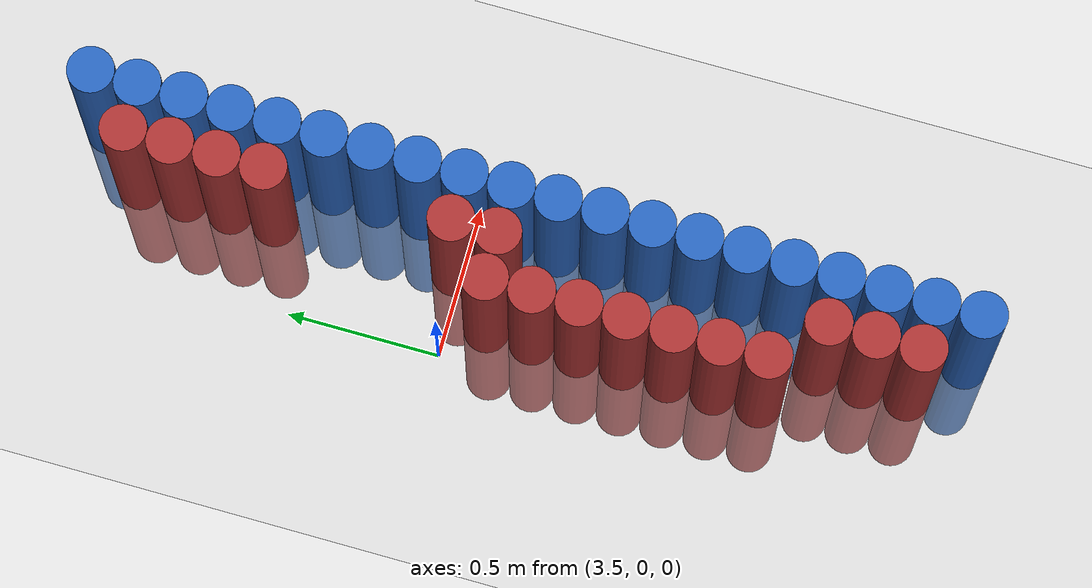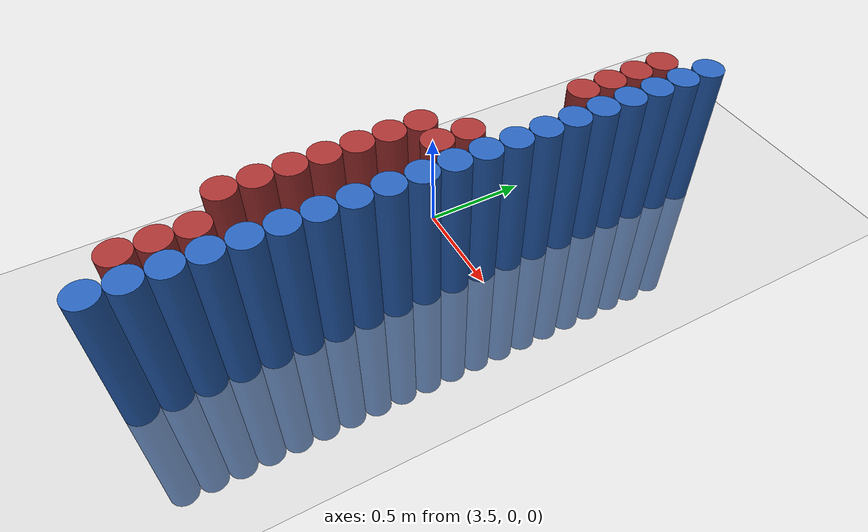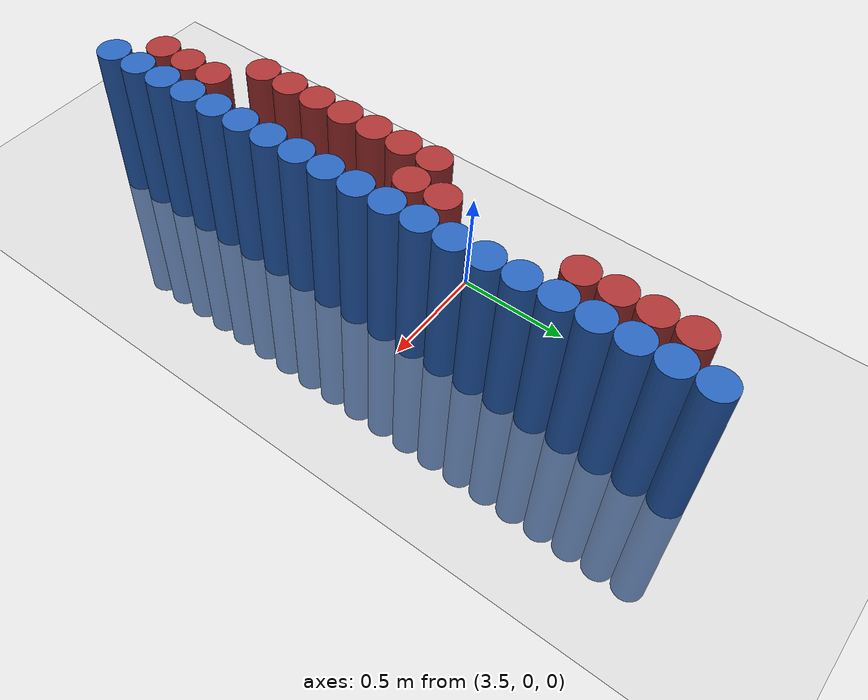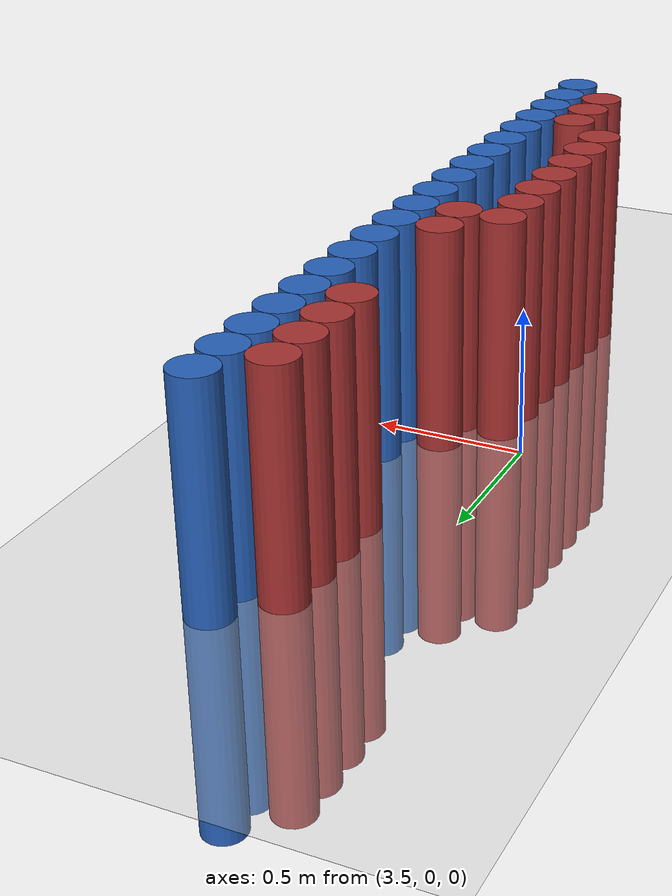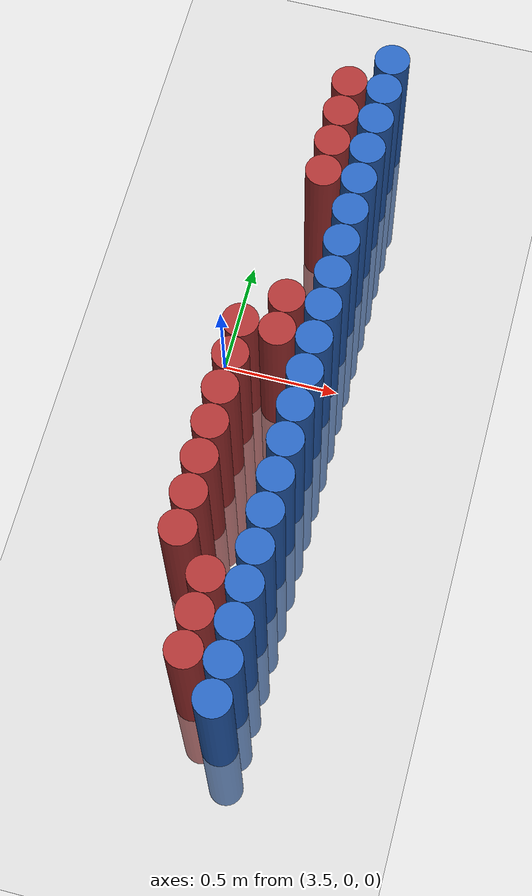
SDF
<sdf version="1.6">
 <world name="default">
  <model name="ground_plane">
   <static>1</static>
   <link name="link">
    <collision name="collision">
     <geometry><plane><normal>0 0 1</normal><size>100 100</size></plane></geometry>
     <surface><friction><ode><mu>100</mu><mu2>50</mu2></ode></friction></surface>
    </collision>
    <visual name="visual">
     <cast_shadows>0</cast_shadows>
     <geometry><plane><normal>0 0 1</normal><size>100 100</size></plane></geometry>
     <material>
      <script><uri>file://media/materials/scripts/gazebo.material</uri><name>Gazebo/Grey</name></script>
     </material>
    </visual>
   </link>
  </model>
  <model name="unit_cylinder_94">
   <static>1</static>
   <pose>3.925000 -1.475000 0.000000 0.000000 0.000000 0.000000</pose>
   <link name="link">
    <inertial>
     <mass>1</mass>
     <inertia><ixx>0.145833</ixx><ixy>0</ixy><ixz>0</ixz><iyy>0.145833</iyy><iyz>0</iyz><izz>0.125</izz></inertia>
    </inertial>
    <collision name="collision">
     <geometry><cylinder><radius>0.075000</radius><length>1.5</length></cylinder></geometry>
    </collision>
    <visual name="visual">
     <geometry><cylinder><radius>0.075000</radius><length>1.5</length></cylinder></geometry>
     <material>
      <ambient>0.152000 0.379000 0.720000 1</ambient>
      <diffuse>0.152000 0.379000 0.720000 1</diffuse>
     </material>
     <material>
      <script><name>Gazebo/Grey</name><uri>file://media/materials/scripts/gazebo.material</uri></script>
     </material>
    </visual>
   </link>
  </model>
  <model name="unit_cylinder_96">
   <static>1</static>
   <pose>3.925000 -1.325000 0.000000 0.000000 0.000000 0.000000</pose>
   <link name="link">
    <inertial>
     <mass>1</mass>
     <inertia><ixx>0.145833</ixx><ixy>0</ixy><ixz>0</ixz><iyy>0.145833</iyy><iyz>0</iyz><izz>0.125</izz></inertia>
    </inertial>
    <collision name="collision">
     <geometry><cylinder><radius>0.075000</radius><length>1.5</length></cylinder></geometry>
    </collision>
    <visual name="visual">
     <geometry><cylinder><radius>0.075000</radius><length>1.5</length></cylinder></geometry>
     <material>
      <ambient>0.152000 0.379000 0.720000 1</ambient>
      <diffuse>0.152000 0.379000 0.720000 1</diffuse>
     </material>
     <material>
      <script><name>Gazebo/Grey</name><uri>file://media/materials/scripts/gazebo.material</uri></script>
     </material>
    </visual>
   </link>
  </model>
  <model name="unit_cylinder_98">
   <static>1</static>
   <pose>3.925000 -1.175000 0.000000 0.000000 0.000000 0.000000</pose>
   <link name="link">
    <inertial>
     <mass>1</mass>
     <inertia><ixx>0.145833</ixx><ixy>0</ixy><ixz>0</ixz><iyy>0.145833</iyy><iyz>0</iyz><izz>0.125</izz></inertia>
    </inertial>
    <collision name="collision">
     <geometry><cylinder><radius>0.075000</radius><length>1.5</length></cylinder></geometry>
    </collision>
    <visual name="visual">
     <geometry><cylinder><radius>0.075000</radius><length>1.5</length></cylinder></geometry>
     <material>
      <ambient>0.152000 0.379000 0.720000 1</ambient>
      <diffuse>0.152000 0.379000 0.720000 1</diffuse>
     </material>
     <material>
      <script><name>Gazebo/Grey</name><uri>file://media/materials/scripts/gazebo.material</uri></script>
     </material>
    </visual>
   </link>
  </model>
  <model name="unit_cylinder_100">
   <static>1</static>
   <pose>3.925000 -1.025000 0.000000 0.000000 0.000000 0.000000</pose>
   <link name="link">
    <inertial>
     <mass>1</mass>
     <inertia><ixx>0.145833</ixx><ixy>0</ixy><ixz>0</ixz><iyy>0.145833</iyy><iyz>0</iyz><izz>0.125</izz></inertia>
    </inertial>
    <collision name="collision">
     <geometry><cylinder><radius>0.075000</radius><length>1.5</length></cylinder></geometry>
    </collision>
    <visual name="visual">
     <geometry><cylinder><radius>0.075000</radius><length>1.5</length></cylinder></geometry>
     <material>
      <ambient>0.152000 0.379000 0.720000 1</ambient>
      <diffuse>0.152000 0.379000 0.720000 1</diffuse>
     </material>
     <material>
      <script><name>Gazebo/Grey</name><uri>file://media/materials/scripts/gazebo.material</uri></script>
     </material>
    </visual>
   </link>
  </model>
  <model name="unit_cylinder_102">
   <static>1</static>
   <pose>3.925000 -0.875000 0.000000 0.000000 0.000000 0.000000</pose>
   <link name="link">
    <inertial>
     <mass>1</mass>
     <inertia><ixx>0.145833</ixx><ixy>0</ixy><ixz>0</ixz><iyy>0.145833</iyy><iyz>0</iyz><izz>0.125</izz></inertia>
    </inertial>
    <collision name="collision">
     <geometry><cylinder><radius>0.075000</radius><length>1.5</length></cylinder></geometry>
    </collision>
    <visual name="visual">
     <geometry><cylinder><radius>0.075000</radius><length>1.5</length></cylinder></geometry>
     <material>
      <ambient>0.152000 0.379000 0.720000 1</ambient>
      <diffuse>0.152000 0.379000 0.720000 1</diffuse>
     </material>
     <material>
      <script><name>Gazebo/Grey</name><uri>file://media/materials/scripts/gazebo.material</uri></script>
     </material>
    </visual>
   </link>
  </model>
  <model name="unit_cylinder_104">
   <static>1</static>
   <pose>3.925000 -0.725000 0.000000 0.000000 0.000000 0.000000</pose>
   <link name="link">
    <inertial>
     <mass>1</mass>
     <inertia><ixx>0.145833</ixx><ixy>0</ixy><ixz>0</ixz><iyy>0.145833</iyy><iyz>0</iyz><izz>0.125</izz></inertia>
    </inertial>
    <collision name="collision">
     <geometry><cylinder><radius>0.075000</radius><length>1.5</length></cylinder></geometry>
    </collision>
    <visual name="visual">
     <geometry><cylinder><radius>0.075000</radius><length>1.5</length></cylinder></geometry>
     <material>
      <ambient>0.152000 0.379000 0.720000 1</ambient>
      <diffuse>0.152000 0.379000 0.720000 1</diffuse>
     </material>
     <material>
      <script><name>Gazebo/Grey</name><uri>file://media/materials/scripts/gazebo.material</uri></script>
     </material>
    </visual>
   </link>
  </model>
  <model name="unit_cylinder_106">
   <static>1</static>
   <pose>3.925000 -0.575000 0.000000 0.000000 0.000000 0.000000</pose>
   <link name="link">
    <inertial>
     <mass>1</mass>
     <inertia><ixx>0.145833</ixx><ixy>0</ixy><ixz>0</ixz><iyy>0.145833</iyy><iyz>0</iyz><izz>0.125</izz></inertia>
    </inertial>
    <collision name="collision">
     <geometry><cylinder><radius>0.075000</radius><length>1.5</length></cylinder></geometry>
    </collision>
    <visual name="visual">
     <geometry><cylinder><radius>0.075000</radius><length>1.5</length></cylinder></geometry>
     <material>
      <ambient>0.152000 0.379000 0.720000 1</ambient>
      <diffuse>0.152000 0.379000 0.720000 1</diffuse>
     </material>
     <material>
      <script><name>Gazebo/Grey</name><uri>file://media/materials/scripts/gazebo.material</uri></script>
     </material>
    </visual>
   </link>
  </model>
  <model name="unit_cylinder_108">
   <static>1</static>
   <pose>3.925000 -0.425000 0.000000 0.000000 0.000000 0.000000</pose>
   <link name="link">
    <inertial>
     <mass>1</mass>
     <inertia><ixx>0.145833</ixx><ixy>0</ixy><ixz>0</ixz><iyy>0.145833</iyy><iyz>0</iyz><izz>0.125</izz></inertia>
    </inertial>
    <collision name="collision">
     <geometry><cylinder><radius>0.075000</radius><length>1.5</length></cylinder></geometry>
    </collision>
    <visual name="visual">
     <geometry><cylinder><radius>0.075000</radius><length>1.5</length></cylinder></geometry>
     <material>
      <ambient>0.152000 0.379000 0.720000 1</ambient>
      <diffuse>0.152000 0.379000 0.720000 1</diffuse>
     </material>
     <material>
      <script><name>Gazebo/Grey</name><uri>file://media/materials/scripts/gazebo.material</uri></script>
     </material>
    </visual>
   </link>
  </model>
  <model name="unit_cylinder_110">
   <static>1</static>
   <pose>3.925000 -0.275000 0.000000 0.000000 0.000000 0.000000</pose>
   <link name="link">
    <inertial>
     <mass>1</mass>
     <inertia><ixx>0.145833</ixx><ixy>0</ixy><ixz>0</ixz><iyy>0.145833</iyy><iyz>0</iyz><izz>0.125</izz></inertia>
    </inertial>
    <collision name="collision">
     <geometry><cylinder><radius>0.075000</radius><length>1.5</length></cylinder></geometry>
    </collision>
    <visual name="visual">
     <geometry><cylinder><radius>0.075000</radius><length>1.5</length></cylinder></geometry>
     <material>
      <ambient>0.152000 0.379000 0.720000 1</ambient>
      <diffuse>0.152000 0.379000 0.720000 1</diffuse>
     </material>
     <material>
      <script><name>Gazebo/Grey</name><uri>file://media/materials/scripts/gazebo.material</uri></script>
     </material>
    </visual>
   </link>
  </model>
  <model name="unit_cylinder_112">
   <static>1</static>
   <pose>3.925000 -0.125000 0.000000 0.000000 0.000000 0.000000</pose>
   <link name="link">
    <inertial>
     <mass>1</mass>
     <inertia><ixx>0.145833</ixx><ixy>0</ixy><ixz>0</ixz><iyy>0.145833</iyy><iyz>0</iyz><izz>0.125</izz></inertia>
    </inertial>
    <collision name="collision">
     <geometry><cylinder><radius>0.075000</radius><length>1.5</length></cylinder></geometry>
    </collision>
    <visual name="visual">
     <geometry><cylinder><radius>0.075000</radius><length>1.5</length></cylinder></geometry>
     <material>
      <ambient>0.152000 0.379000 0.720000 1</ambient>
      <diffuse>0.152000 0.379000 0.720000 1</diffuse>
     </material>
     <material>
      <script><name>Gazebo/Grey</name><uri>file://media/materials/scripts/gazebo.material</uri></script>
     </material>
    </visual>
   </link>
  </model>
  <model name="unit_cylinder_114">
   <static>1</static>
   <pose>3.925000 0.025000 0.000000 0.000000 0.000000 0.000000</pose>
   <link name="link">
    <inertial>
     <mass>1</mass>
     <inertia><ixx>0.145833</ixx><ixy>0</ixy><ixz>0</ixz><iyy>0.145833</iyy><iyz>0</iyz><izz>0.125</izz></inertia>
    </inertial>
    <collision name="collision">
     <geometry><cylinder><radius>0.075000</radius><length>1.5</length></cylinder></geometry>
    </collision>
    <visual name="visual">
     <geometry><cylinder><radius>0.075000</radius><length>1.5</length></cylinder></geometry>
     <material>
      <ambient>0.152000 0.379000 0.720000 1</ambient>
      <diffuse>0.152000 0.379000 0.720000 1</diffuse>
     </material>
     <material>
      <script><name>Gazebo/Grey</name><uri>file://media/materials/scripts/gazebo.material</uri></script>
     </material>
    </visual>
   </link>
  </model>
  <model name="unit_cylinder_116">
   <static>1</static>
   <pose>3.925000 0.175000 0.000000 0.000000 0.000000 0.000000</pose>
   <link name="link">
    <inertial>
     <mass>1</mass>
     <inertia><ixx>0.145833</ixx><ixy>0</ixy><ixz>0</ixz><iyy>0.145833</iyy><iyz>0</iyz><izz>0.125</izz></inertia>
    </inertial>
    <collision name="collision">
     <geometry><cylinder><radius>0.075000</radius><length>1.5</length></cylinder></geometry>
    </collision>
    <visual name="visual">
     <geometry><cylinder><radius>0.075000</radius><length>1.5</length></cylinder></geometry>
     <material>
      <ambient>0.152000 0.379000 0.720000 1</ambient>
      <diffuse>0.152000 0.379000 0.720000 1</diffuse>
     </material>
     <material>
      <script><name>Gazebo/Grey</name><uri>file://media/materials/scripts/gazebo.material</uri></script>
     </material>
    </visual>
   </link>
  </model>
  <model name="unit_cylinder_118">
   <static>1</static>
   <pose>3.925000 0.325000 0.000000 0.000000 0.000000 0.000000</pose>
   <link name="link">
    <inertial>
     <mass>1</mass>
     <inertia><ixx>0.145833</ixx><ixy>0</ixy><ixz>0</ixz><iyy>0.145833</iyy><iyz>0</iyz><izz>0.125</izz></inertia>
    </inertial>
    <collision name="collision">
     <geometry><cylinder><radius>0.075000</radius><length>1.5</length></cylinder></geometry>
    </collision>
    <visual name="visual">
     <geometry><cylinder><radius>0.075000</radius><length>1.5</length></cylinder></geometry>
     <material>
      <ambient>0.152000 0.379000 0.720000 1</ambient>
      <diffuse>0.152000 0.379000 0.720000 1</diffuse>
     </material>
     <material>
      <script><name>Gazebo/Grey</name><uri>file://media/materials/scripts/gazebo.material</uri></script>
     </material>
    </visual>
   </link>
  </model>
  <model name="unit_cylinder_120">
   <static>1</static>
   <pose>3.925000 0.475000 0.000000 0.000000 0.000000 0.000000</pose>
   <link name="link">
    <inertial>
     <mass>1</mass>
     <inertia><ixx>0.145833</ixx><ixy>0</ixy><ixz>0</ixz><iyy>0.145833</iyy><iyz>0</iyz><izz>0.125</izz></inertia>
    </inertial>
    <collision name="collision">
     <geometry><cylinder><radius>0.075000</radius><length>1.5</length></cylinder></geometry>
    </collision>
    <visual name="visual">
     <geometry><cylinder><radius>0.075000</radius><length>1.5</length></cylinder></geometry>
     <material>
      <ambient>0.152000 0.379000 0.720000 1</ambient>
      <diffuse>0.152000 0.379000 0.720000 1</diffuse>
     </material>
     <material>
      <script><name>Gazebo/Grey</name><uri>file://media/materials/scripts/gazebo.material</uri></script>
     </material>
    </visual>
   </link>
  </model>
  <model name="unit_cylinder_122">
   <static>1</static>
   <pose>3.925000 0.625000 0.000000 0.000000 0.000000 0.000000</pose>
   <link name="link">
    <inertial>
     <mass>1</mass>
     <inertia><ixx>0.145833</ixx><ixy>0</ixy><ixz>0</ixz><iyy>0.145833</iyy><iyz>0</iyz><izz>0.125</izz></inertia>
    </inertial>
    <collision name="collision">
     <geometry><cylinder><radius>0.075000</radius><length>1.5</length></cylinder></geometry>
    </collision>
    <visual name="visual">
     <geometry><cylinder><radius>0.075000</radius><length>1.5</length></cylinder></geometry>
     <material>
      <ambient>0.152000 0.379000 0.720000 1</ambient>
      <diffuse>0.152000 0.379000 0.720000 1</diffuse>
     </material>
     <material>
      <script><name>Gazebo/Grey</name><uri>file://media/materials/scripts/gazebo.material</uri></script>
     </material>
    </visual>
   </link>
  </model>
  <model name="unit_cylinder_124">
   <static>1</static>
   <pose>3.925000 0.775000 0.000000 0.000000 0.000000 0.000000</pose>
   <link name="link">
    <inertial>
     <mass>1</mass>
     <inertia><ixx>0.145833</ixx><ixy>0</ixy><ixz>0</ixz><iyy>0.145833</iyy><iyz>0</iyz><izz>0.125</izz></inertia>
    </inertial>
    <collision name="collision">
     <geometry><cylinder><radius>0.075000</radius><length>1.5</length></cylinder></geometry>
    </collision>
    <visual name="visual">
     <geometry><cylinder><radius>0.075000</radius><length>1.5</length></cylinder></geometry>
     <material>
      <ambient>0.152000 0.379000 0.720000 1</ambient>
      <diffuse>0.152000 0.379000 0.720000 1</diffuse>
     </material>
     <material>
      <script><name>Gazebo/Grey</name><uri>file://media/materials/scripts/gazebo.material</uri></script>
     </material>
    </visual>
   </link>
  </model>
  <model name="unit_cylinder_126">
   <static>1</static>
   <pose>3.925000 0.925000 0.000000 0.000000 0.000000 0.000000</pose>
   <link name="link">
    <inertial>
     <mass>1</mass>
     <inertia><ixx>0.145833</ixx><ixy>0</ixy><ixz>0</ixz><iyy>0.145833</iyy><iyz>0</iyz><izz>0.125</izz></inertia>
    </inertial>
    <collision name="collision">
     <geometry><cylinder><radius>0.075000</radius><length>1.5</length></cylinder></geometry>
    </collision>
    <visual name="visual">
     <geometry><cylinder><radius>0.075000</radius><length>1.5</length></cylinder></geometry>
     <material>
      <ambient>0.152000 0.379000 0.720000 1</ambient>
      <diffuse>0.152000 0.379000 0.720000 1</diffuse>
     </material>
     <material>
      <script><name>Gazebo/Grey</name><uri>file://media/materials/scripts/gazebo.material</uri></script>
     </material>
    </visual>
   </link>
  </model>
  <model name="unit_cylinder_128">
   <static>1</static>
   <pose>3.925000 1.075000 0.000000 0.000000 0.000000 0.000000</pose>
   <link name="link">
    <inertial>
     <mass>1</mass>
     <inertia><ixx>0.145833</ixx><ixy>0</ixy><ixz>0</ixz><iyy>0.145833</iyy><iyz>0</iyz><izz>0.125</izz></inertia>
    </inertial>
    <collision name="collision">
     <geometry><cylinder><radius>0.075000</radius><length>1.5</length></cylinder></geometry>
    </collision>
    <visual name="visual">
     <geometry><cylinder><radius>0.075000</radius><length>1.5</length></cylinder></geometry>
     <material>
      <ambient>0.152000 0.379000 0.720000 1</ambient>
      <diffuse>0.152000 0.379000 0.720000 1</diffuse>
     </material>
     <material>
      <script><name>Gazebo/Grey</name><uri>file://media/materials/scripts/gazebo.material</uri></script>
     </material>
    </visual>
   </link>
  </model>
  <model name="unit_cylinder_130">
   <static>1</static>
   <pose>3.925000 1.225000 0.000000 0.000000 0.000000 0.000000</pose>
   <link name="link">
    <inertial>
     <mass>1</mass>
     <inertia><ixx>0.145833</ixx><ixy>0</ixy><ixz>0</ixz><iyy>0.145833</iyy><iyz>0</iyz><izz>0.125</izz></inertia>
    </inertial>
    <collision name="collision">
     <geometry><cylinder><radius>0.075000</radius><length>1.5</length></cylinder></geometry>
    </collision>
    <visual name="visual">
     <geometry><cylinder><radius>0.075000</radius><length>1.5</length></cylinder></geometry>
     <material>
      <ambient>0.152000 0.379000 0.720000 1</ambient>
      <diffuse>0.152000 0.379000 0.720000 1</diffuse>
     </material>
     <material>
      <script><name>Gazebo/Grey</name><uri>file://media/materials/scripts/gazebo.material</uri></script>
     </material>
    </visual>
   </link>
  </model>
  <model name="unit_cylinder_440">
   <static>1</static>
   <pose>3.625000 -1.025000 0.000000 0.000000 0.000000 0.000000</pose>
   <link name="link">
    <inertial>
     <mass>1</mass>
     <inertia><ixx>0.145833</ixx><ixy>0</ixy><ixz>0</ixz><iyy>0.145833</iyy><iyz>0</iyz><izz>0.125</izz></inertia>
    </inertial>
    <collision name="collision">
     <geometry><cylinder><radius>0.075000</radius><length>1.5</length></cylinder></geometry>
    </collision>
    <visual name="visual">
     <geometry><cylinder><radius>0.075000</radius><length>1.5</length></cylinder></geometry>
     <material>
      <ambient>0.648000 0.192000 0.192000 1</ambient>
      <diffuse>0.648000 0.192000 0.192000 1</diffuse>
     </material>
     <material>
      <script><name>Gazebo/Grey</name><uri>file://media/materials/scripts/gazebo.material</uri></script>
     </material>
    </visual>
   </link>
  </model>
  <model name="unit_cylinder_441">
   <static>1</static>
   <pose>3.625000 -0.875000 0.000000 0.000000 0.000000 0.000000</pose>
   <link name="link">
    <inertial>
     <mass>1</mass>
     <inertia><ixx>0.145833</ixx><ixy>0</ixy><ixz>0</ixz><iyy>0.145833</iyy><iyz>0</iyz><izz>0.125</izz></inertia>
    </inertial>
    <collision name="collision">
     <geometry><cylinder><radius>0.075000</radius><length>1.5</length></cylinder></geometry>
    </collision>
    <visual name="visual">
     <geometry><cylinder><radius>0.075000</radius><length>1.5</length></cylinder></geometry>
     <material>
      <ambient>0.648000 0.192000 0.192000 1</ambient>
      <diffuse>0.648000 0.192000 0.192000 1</diffuse>
     </material>
     <material>
      <script><name>Gazebo/Grey</name><uri>file://media/materials/scripts/gazebo.material</uri></script>
     </material>
    </visual>
   </link>
  </model>
  <model name="unit_cylinder_442">
   <static>1</static>
   <pose>3.625000 -0.725000 0.000000 0.000000 0.000000 0.000000</pose>
   <link name="link">
    <inertial>
     <mass>1</mass>
     <inertia><ixx>0.145833</ixx><ixy>0</ixy><ixz>0</ixz><iyy>0.145833</iyy><iyz>0</iyz><izz>0.125</izz></inertia>
    </inertial>
    <collision name="collision">
     <geometry><cylinder><radius>0.075000</radius><length>1.5</length></cylinder></geometry>
    </collision>
    <visual name="visual">
     <geometry><cylinder><radius>0.075000</radius><length>1.5</length></cylinder></geometry>
     <material>
      <ambient>0.648000 0.192000 0.192000 1</ambient>
      <diffuse>0.648000 0.192000 0.192000 1</diffuse>
     </material>
     <material>
      <script><name>Gazebo/Grey</name><uri>file://media/materials/scripts/gazebo.material</uri></script>
     </material>
    </visual>
   </link>
  </model>
  <model name="unit_cylinder_443">
   <static>1</static>
   <pose>3.625000 -0.575000 0.000000 0.000000 0.000000 0.000000</pose>
   <link name="link">
    <inertial>
     <mass>1</mass>
     <inertia><ixx>0.145833</ixx><ixy>0</ixy><ixz>0</ixz><iyy>0.145833</iyy><iyz>0</iyz><izz>0.125</izz></inertia>
    </inertial>
    <collision name="collision">
     <geometry><cylinder><radius>0.075000</radius><length>1.5</length></cylinder></geometry>
    </collision>
    <visual name="visual">
     <geometry><cylinder><radius>0.075000</radius><length>1.5</length></cylinder></geometry>
     <material>
      <ambient>0.648000 0.192000 0.192000 1</ambient>
      <diffuse>0.648000 0.192000 0.192000 1</diffuse>
     </material>
     <material>
      <script><name>Gazebo/Grey</name><uri>file://media/materials/scripts/gazebo.material</uri></script>
     </material>
    </visual>
   </link>
  </model>
  <model name="unit_cylinder_444">
   <static>1</static>
   <pose>3.625000 -0.425000 0.000000 0.000000 0.000000 0.000000</pose>
   <link name="link">
    <inertial>
     <mass>1</mass>
     <inertia><ixx>0.145833</ixx><ixy>0</ixy><ixz>0</ixz><iyy>0.145833</iyy><iyz>0</iyz><izz>0.125</izz></inertia>
    </inertial>
    <collision name="collision">
     <geometry><cylinder><radius>0.075000</radius><length>1.5</length></cylinder></geometry>
    </collision>
    <visual name="visual">
     <geometry><cylinder><radius>0.075000</radius><length>1.5</length></cylinder></geometry>
     <material>
      <ambient>0.648000 0.192000 0.192000 1</ambient>
      <diffuse>0.648000 0.192000 0.192000 1</diffuse>
     </material>
     <material>
      <script><name>Gazebo/Grey</name><uri>file://media/materials/scripts/gazebo.material</uri></script>
     </material>
    </visual>
   </link>
  </model>
  <model name="unit_cylinder_445">
   <static>1</static>
   <pose>3.625000 -0.275000 0.000000 0.000000 0.000000 0.000000</pose>
   <link name="link">
    <inertial>
     <mass>1</mass>
     <inertia><ixx>0.145833</ixx><ixy>0</ixy><ixz>0</ixz><iyy>0.145833</iyy><iyz>0</iyz><izz>0.125</izz></inertia>
    </inertial>
    <collision name="collision">
     <geometry><cylinder><radius>0.075000</radius><length>1.5</length></cylinder></geometry>
    </collision>
    <visual name="visual">
     <geometry><cylinder><radius>0.075000</radius><length>1.5</length></cylinder></geometry>
     <material>
      <ambient>0.648000 0.192000 0.192000 1</ambient>
      <diffuse>0.648000 0.192000 0.192000 1</diffuse>
     </material>
     <material>
      <script><name>Gazebo/Grey</name><uri>file://media/materials/scripts/gazebo.material</uri></script>
     </material>
    </visual>
   </link>
  </model>
  <model name="unit_cylinder_446">
   <static>1</static>
   <pose>3.625000 -0.125000 0.000000 0.000000 0.000000 0.000000</pose>
   <link name="link">
    <inertial>
     <mass>1</mass>
     <inertia><ixx>0.145833</ixx><ixy>0</ixy><ixz>0</ixz><iyy>0.145833</iyy><iyz>0</iyz><izz>0.125</izz></inertia>
    </inertial>
    <collision name="collision">
     <geometry><cylinder><radius>0.075000</radius><length>1.5</length></cylinder></geometry>
    </collision>
    <visual name="visual">
     <geometry><cylinder><radius>0.075000</radius><length>1.5</length></cylinder></geometry>
     <material>
      <ambient>0.648000 0.192000 0.192000 1</ambient>
      <diffuse>0.648000 0.192000 0.192000 1</diffuse>
     </material>
     <material>
      <script><name>Gazebo/Grey</name><uri>file://media/materials/scripts/gazebo.material</uri></script>
     </material>
    </visual>
   </link>
  </model>
  <model name="unit_cylinder_458">
   <static>1</static>
   <pose>3.775000 -1.475000 0.000000 0.000000 0.000000 0.000000</pose>
   <link name="link">
    <inertial>
     <mass>1</mass>
     <inertia><ixx>0.145833</ixx><ixy>0</ixy><ixz>0</ixz><iyy>0.145833</iyy><iyz>0</iyz><izz>0.125</izz></inertia>
    </inertial>
    <collision name="collision">
     <geometry><cylinder><radius>0.075000</radius><length>1.5</length></cylinder></geometry>
    </collision>
    <visual name="visual">
     <geometry><cylinder><radius>0.075000</radius><length>1.5</length></cylinder></geometry>
     <material>
      <ambient>0.648000 0.192000 0.192000 1</ambient>
      <diffuse>0.648000 0.192000 0.192000 1</diffuse>
     </material>
     <material>
      <script><name>Gazebo/Grey</name><uri>file://media/materials/scripts/gazebo.material</uri></script>
     </material>
    </visual>
   </link>
  </model>
  <model name="unit_cylinder_459">
   <static>1</static>
   <pose>3.775000 -1.325000 0.000000 0.000000 0.000000 0.000000</pose>
   <link name="link">
    <inertial>
     <mass>1</mass>
     <inertia><ixx>0.145833</ixx><ixy>0</ixy><ixz>0</ixz><iyy>0.145833</iyy><iyz>0</iyz><izz>0.125</izz></inertia>
    </inertial>
    <collision name="collision">
     <geometry><cylinder><radius>0.075000</radius><length>1.5</length></cylinder></geometry>
    </collision>
    <visual name="visual">
     <geometry><cylinder><radius>0.075000</radius><length>1.5</length></cylinder></geometry>
     <material>
      <ambient>0.648000 0.192000 0.192000 1</ambient>
      <diffuse>0.648000 0.192000 0.192000 1</diffuse>
     </material>
     <material>
      <script><name>Gazebo/Grey</name><uri>file://media/materials/scripts/gazebo.material</uri></script>
     </material>
    </visual>
   </link>
  </model>
  <model name="unit_cylinder_460">
   <static>1</static>
   <pose>3.775000 -1.175000 0.000000 0.000000 0.000000 0.000000</pose>
   <link name="link">
    <inertial>
     <mass>1</mass>
     <inertia><ixx>0.145833</ixx><ixy>0</ixy><ixz>0</ixz><iyy>0.145833</iyy><iyz>0</iyz><izz>0.125</izz></inertia>
    </inertial>
    <collision name="collision">
     <geometry><cylinder><radius>0.075000</radius><length>1.5</length></cylinder></geometry>
    </collision>
    <visual name="visual">
     <geometry><cylinder><radius>0.075000</radius><length>1.5</length></cylinder></geometry>
     <material>
      <ambient>0.648000 0.192000 0.192000 1</ambient>
      <diffuse>0.648000 0.192000 0.192000 1</diffuse>
     </material>
     <material>
      <script><name>Gazebo/Grey</name><uri>file://media/materials/scripts/gazebo.material</uri></script>
     </material>
    </visual>
   </link>
  </model>
  <model name="unit_cylinder_461">
   <static>1</static>
   <pose>3.775000 -0.125000 0.000000 0.000000 0.000000 0.000000</pose>
   <link name="link">
    <inertial>
     <mass>1</mass>
     <inertia><ixx>0.145833</ixx><ixy>0</ixy><ixz>0</ixz><iyy>0.145833</iyy><iyz>0</iyz><izz>0.125</izz></inertia>
    </inertial>
    <collision name="collision">
     <geometry><cylinder><radius>0.075000</radius><length>1.5</length></cylinder></geometry>
    </collision>
    <visual name="visual">
     <geometry><cylinder><radius>0.075000</radius><length>1.5</length></cylinder></geometry>
     <material>
      <ambient>0.648000 0.192000 0.192000 1</ambient>
      <diffuse>0.648000 0.192000 0.192000 1</diffuse>
     </material>
     <material>
      <script><name>Gazebo/Grey</name><uri>file://media/materials/scripts/gazebo.material</uri></script>
     </material>
    </visual>
   </link>
  </model>
  <model name="unit_cylinder_462">
   <static>1</static>
   <pose>3.775000 0.025000 0.000000 0.000000 0.000000 0.000000</pose>
   <link name="link">
    <inertial>
     <mass>1</mass>
     <inertia><ixx>0.145833</ixx><ixy>0</ixy><ixz>0</ixz><iyy>0.145833</iyy><iyz>0</iyz><izz>0.125</izz></inertia>
    </inertial>
    <collision name="collision">
     <geometry><cylinder><radius>0.075000</radius><length>1.5</length></cylinder></geometry>
    </collision>
    <visual name="visual">
     <geometry><cylinder><radius>0.075000</radius><length>1.5</length></cylinder></geometry>
     <material>
      <ambient>0.648000 0.192000 0.192000 1</ambient>
      <diffuse>0.648000 0.192000 0.192000 1</diffuse>
     </material>
     <material>
      <script><name>Gazebo/Grey</name><uri>file://media/materials/scripts/gazebo.material</uri></script>
     </material>
    </visual>
   </link>
  </model>
  <model name="unit_cylinder_463">
   <static>1</static>
   <pose>3.775000 0.625000 0.000000 0.000000 0.000000 0.000000</pose>
   <link name="link">
    <inertial>
     <mass>1</mass>
     <inertia><ixx>0.145833</ixx><ixy>0</ixy><ixz>0</ixz><iyy>0.145833</iyy><iyz>0</iyz><izz>0.125</izz></inertia>
    </inertial>
    <collision name="collision">
     <geometry><cylinder><radius>0.075000</radius><length>1.5</length></cylinder></geometry>
    </collision>
    <visual name="visual">
     <geometry><cylinder><radius>0.075000</radius><length>1.5</length></cylinder></geometry>
     <material>
      <ambient>0.648000 0.192000 0.192000 1</ambient>
      <diffuse>0.648000 0.192000 0.192000 1</diffuse>
     </material>
     <material>
      <script><name>Gazebo/Grey</name><uri>file://media/materials/scripts/gazebo.material</uri></script>
     </material>
    </visual>
   </link>
  </model>
  <model name="unit_cylinder_464">
   <static>1</static>
   <pose>3.775000 0.775000 0.000000 0.000000 0.000000 0.000000</pose>
   <link name="link">
    <inertial>
     <mass>1</mass>
     <inertia><ixx>0.145833</ixx><ixy>0</ixy><ixz>0</ixz><iyy>0.145833</iyy><iyz>0</iyz><izz>0.125</izz></inertia>
    </inertial>
    <collision name="collision">
     <geometry><cylinder><radius>0.075000</radius><length>1.5</length></cylinder></geometry>
    </collision>
    <visual name="visual">
     <geometry><cylinder><radius>0.075000</radius><length>1.5</length></cylinder></geometry>
     <material>
      <ambient>0.648000 0.192000 0.192000 1</ambient>
      <diffuse>0.648000 0.192000 0.192000 1</diffuse>
     </material>
     <material>
      <script><name>Gazebo/Grey</name><uri>file://media/materials/scripts/gazebo.material</uri></script>
     </material>
    </visual>
   </link>
  </model>
  <model name="unit_cylinder_465">
   <static>1</static>
   <pose>3.775000 0.925000 0.000000 0.000000 0.000000 0.000000</pose>
   <link name="link">
    <inertial>
     <mass>1</mass>
     <inertia><ixx>0.145833</ixx><ixy>0</ixy><ixz>0</ixz><iyy>0.145833</iyy><iyz>0</iyz><izz>0.125</izz></inertia>
    </inertial>
    <collision name="collision">
     <geometry><cylinder><radius>0.075000</radius><length>1.5</length></cylinder></geometry>
    </collision>
    <visual name="visual">
     <geometry><cylinder><radius>0.075000</radius><length>1.5</length></cylinder></geometry>
     <material>
      <ambient>0.648000 0.192000 0.192000 1</ambient>
      <diffuse>0.648000 0.192000 0.192000 1</diffuse>
     </material>
     <material>
      <script><name>Gazebo/Grey</name><uri>file://media/materials/scripts/gazebo.material</uri></script>
     </material>
    </visual>
   </link>
  </model>
  <model name="unit_cylinder_466">
   <static>1</static>
   <pose>3.775000 1.075000 0.000000 0.000000 0.000000 0.000000</pose>
   <link name="link">
    <inertial>
     <mass>1</mass>
     <inertia><ixx>0.145833</ixx><ixy>0</ixy><ixz>0</ixz><iyy>0.145833</iyy><iyz>0</iyz><izz>0.125</izz></inertia>
    </inertial>
    <collision name="collision">
     <geometry><cylinder><radius>0.075000</radius><length>1.5</length></cylinder></geometry>
    </collision>
    <visual name="visual">
     <geometry><cylinder><radius>0.075000</radius><length>1.5</length></cylinder></geometry>
     <material>
      <ambient>0.648000 0.192000 0.192000 1</ambient>
      <diffuse>0.648000 0.192000 0.192000 1</diffuse>
     </material>
     <material>
      <script><name>Gazebo/Grey</name><uri>file://media/materials/scripts/gazebo.material</uri></script>
     </material>
    </visual>
   </link>
  </model>
  <model name="unit_cylinder_489">
   <static>1</static>
   <pose>3.925000 -1.625000 0.000000 0.000000 0.000000 0.000000</pose>
   <link name="link">
    <inertial>
     <mass>1</mass>
     <inertia><ixx>0.145833</ixx><ixy>0</ixy><ixz>0</ixz><iyy>0.145833</iyy><iyz>0</iyz><izz>0.125</izz></inertia>
    </inertial>
    <collision name="collision">
     <geometry><cylinder><radius>0.075000</radius><length>1.5</length></cylinder></geometry>
    </collision>
    <visual name="visual">
     <geometry><cylinder><radius>0.075000</radius><length>1.5</length></cylinder></geometry>
     <material>
      <ambient>0.152000 0.379000 0.720000 1</ambient>
      <diffuse>0.152000 0.379000 0.720000 1</diffuse>
     </material>
     <material>
      <script><name>Gazebo/Grey</name><uri>file://media/materials/scripts/gazebo.material</uri></script>
     </material>
    </visual>
   </link>
  </model>
  <model name="unit_cylinder_490">
   <static>1</static>
   <pose>3.925000 -1.475000 0.000000 0.000000 0.000000 0.000000</pose>
   <link name="link">
    <inertial>
     <mass>1</mass>
     <inertia><ixx>0.145833</ixx><ixy>0</ixy><ixz>0</ixz><iyy>0.145833</iyy><iyz>0</iyz><izz>0.125</izz></inertia>
    </inertial>
    <collision name="collision">
     <geometry><cylinder><radius>0.075000</radius><length>1.5</length></cylinder></geometry>
    </collision>
    <visual name="visual">
     <geometry><cylinder><radius>0.075000</radius><length>1.5</length></cylinder></geometry>
     <material>
      <ambient>0.152000 0.379000 0.720000 1</ambient>
      <diffuse>0.152000 0.379000 0.720000 1</diffuse>
     </material>
     <material>
      <script><name>Gazebo/Grey</name><uri>file://media/materials/scripts/gazebo.material</uri></script>
     </material>
    </visual>
   </link>
  </model>
  <model name="unit_cylinder_491">
   <static>1</static>
   <pose>3.925000 -1.325000 0.000000 0.000000 0.000000 0.000000</pose>
   <link name="link">
    <inertial>
     <mass>1</mass>
     <inertia><ixx>0.145833</ixx><ixy>0</ixy><ixz>0</ixz><iyy>0.145833</iyy><iyz>0</iyz><izz>0.125</izz></inertia>
    </inertial>
    <collision name="collision">
     <geometry><cylinder><radius>0.075000</radius><length>1.5</length></cylinder></geometry>
    </collision>
    <visual name="visual">
     <geometry><cylinder><radius>0.075000</radius><length>1.5</length></cylinder></geometry>
     <material>
      <ambient>0.152000 0.379000 0.720000 1</ambient>
      <diffuse>0.152000 0.379000 0.720000 1</diffuse>
     </material>
     <material>
      <script><name>Gazebo/Grey</name><uri>file://media/materials/scripts/gazebo.material</uri></script>
     </material>
    </visual>
   </link>
  </model>
  <model name="unit_cylinder_492">
   <static>1</static>
   <pose>3.925000 -1.175000 0.000000 0.000000 0.000000 0.000000</pose>
   <link name="link">
    <inertial>
     <mass>1</mass>
     <inertia><ixx>0.145833</ixx><ixy>0</ixy><ixz>0</ixz><iyy>0.145833</iyy><iyz>0</iyz><izz>0.125</izz></inertia>
    </inertial>
    <collision name="collision">
     <geometry><cylinder><radius>0.075000</radius><length>1.5</length></cylinder></geometry>
    </collision>
    <visual name="visual">
     <geometry><cylinder><radius>0.075000</radius><length>1.5</length></cylinder></geometry>
     <material>
      <ambient>0.152000 0.379000 0.720000 1</ambient>
      <diffuse>0.152000 0.379000 0.720000 1</diffuse>
     </material>
     <material>
      <script><name>Gazebo/Grey</name><uri>file://media/materials/scripts/gazebo.material</uri></script>
     </material>
    </visual>
   </link>
  </model>
  <model name="unit_cylinder_493">
   <static>1</static>
   <pose>3.925000 -1.025000 0.000000 0.000000 0.000000 0.000000</pose>
   <link name="link">
    <inertial>
     <mass>1</mass>
     <inertia><ixx>0.145833</ixx><ixy>0</ixy><ixz>0</ixz><iyy>0.145833</iyy><iyz>0</iyz><izz>0.125</izz></inertia>
    </inertial>
    <collision name="collision">
     <geometry><cylinder><radius>0.075000</radius><length>1.5</length></cylinder></geometry>
    </collision>
    <visual name="visual">
     <geometry><cylinder><radius>0.075000</radius><length>1.5</length></cylinder></geometry>
     <material>
      <ambient>0.152000 0.379000 0.720000 1</ambient>
      <diffuse>0.152000 0.379000 0.720000 1</diffuse>
     </material>
     <material>
      <script><name>Gazebo/Grey</name><uri>file://media/materials/scripts/gazebo.material</uri></script>
     </material>
    </visual>
   </link>
  </model>
  <model name="unit_cylinder_494">
   <static>1</static>
   <pose>3.925000 -0.875000 0.000000 0.000000 0.000000 0.000000</pose>
   <link name="link">
    <inertial>
     <mass>1</mass>
     <inertia><ixx>0.145833</ixx><ixy>0</ixy><ixz>0</ixz><iyy>0.145833</iyy><iyz>0</iyz><izz>0.125</izz></inertia>
    </inertial>
    <collision name="collision">
     <geometry><cylinder><radius>0.075000</radius><length>1.5</length></cylinder></geometry>
    </collision>
    <visual name="visual">
     <geometry><cylinder><radius>0.075000</radius><length>1.5</length></cylinder></geometry>
     <material>
      <ambient>0.152000 0.379000 0.720000 1</ambient>
      <diffuse>0.152000 0.379000 0.720000 1</diffuse>
     </material>
     <material>
      <script><name>Gazebo/Grey</name><uri>file://media/materials/scripts/gazebo.material</uri></script>
     </material>
    </visual>
   </link>
  </model>
  <model name="unit_cylinder_495">
   <static>1</static>
   <pose>3.925000 -0.725000 0.000000 0.000000 0.000000 0.000000</pose>
   <link name="link">
    <inertial>
     <mass>1</mass>
     <inertia><ixx>0.145833</ixx><ixy>0</ixy><ixz>0</ixz><iyy>0.145833</iyy><iyz>0</iyz><izz>0.125</izz></inertia>
    </inertial>
    <collision name="collision">
     <geometry><cylinder><radius>0.075000</radius><length>1.5</length></cylinder></geometry>
    </collision>
    <visual name="visual">
     <geometry><cylinder><radius>0.075000</radius><length>1.5</length></cylinder></geometry>
     <material>
      <ambient>0.152000 0.379000 0.720000 1</ambient>
      <diffuse>0.152000 0.379000 0.720000 1</diffuse>
     </material>
     <material>
      <script><name>Gazebo/Grey</name><uri>file://media/materials/scripts/gazebo.material</uri></script>
     </material>
    </visual>
   </link>
  </model>
  <model name="unit_cylinder_496">
   <static>1</static>
   <pose>3.925000 -0.575000 0.000000 0.000000 0.000000 0.000000</pose>
   <link name="link">
    <inertial>
     <mass>1</mass>
     <inertia><ixx>0.145833</ixx><ixy>0</ixy><ixz>0</ixz><iyy>0.145833</iyy><iyz>0</iyz><izz>0.125</izz></inertia>
    </inertial>
    <collision name="collision">
     <geometry><cylinder><radius>0.075000</radius><length>1.5</length></cylinder></geometry>
    </collision>
    <visual name="visual">
     <geometry><cylinder><radius>0.075000</radius><length>1.5</length></cylinder></geometry>
     <material>
      <ambient>0.152000 0.379000 0.720000 1</ambient>
      <diffuse>0.152000 0.379000 0.720000 1</diffuse>
     </material>
     <material>
      <script><name>Gazebo/Grey</name><uri>file://media/materials/scripts/gazebo.material</uri></script>
     </material>
    </visual>
   </link>
  </model>
  <model name="unit_cylinder_497">
   <static>1</static>
   <pose>3.925000 -0.425000 0.000000 0.000000 0.000000 0.000000</pose>
   <link name="link">
    <inertial>
     <mass>1</mass>
     <inertia><ixx>0.145833</ixx><ixy>0</ixy><ixz>0</ixz><iyy>0.145833</iyy><iyz>0</iyz><izz>0.125</izz></inertia>
    </inertial>
    <collision name="collision">
     <geometry><cylinder><radius>0.075000</radius><length>1.5</length></cylinder></geometry>
    </collision>
    <visual name="visual">
     <geometry><cylinder><radius>0.075000</radius><length>1.5</length></cylinder></geometry>
     <material>
      <ambient>0.152000 0.379000 0.720000 1</ambient>
      <diffuse>0.152000 0.379000 0.720000 1</diffuse>
     </material>
     <material>
      <script><name>Gazebo/Grey</name><uri>file://media/materials/scripts/gazebo.material</uri></script>
     </material>
    </visual>
   </link>
  </model>
  <model name="unit_cylinder_498">
   <static>1</static>
   <pose>3.925000 -0.275000 0.000000 0.000000 0.000000 0.000000</pose>
   <link name="link">
    <inertial>
     <mass>1</mass>
     <inertia><ixx>0.145833</ixx><ixy>0</ixy><ixz>0</ixz><iyy>0.145833</iyy><iyz>0</iyz><izz>0.125</izz></inertia>
    </inertial>
    <collision name="collision">
     <geometry><cylinder><radius>0.075000</radius><length>1.5</length></cylinder></geometry>
    </collision>
    <visual name="visual">
     <geometry><cylinder><radius>0.075000</radius><length>1.5</length></cylinder></geometry>
     <material>
      <ambient>0.152000 0.379000 0.720000 1</ambient>
      <diffuse>0.152000 0.379000 0.720000 1</diffuse>
     </material>
     <material>
      <script><name>Gazebo/Grey</name><uri>file://media/materials/scripts/gazebo.material</uri></script>
     </material>
    </visual>
   </link>
  </model>
  <model name="unit_cylinder_499">
   <static>1</static>
   <pose>3.925000 -0.125000 0.000000 0.000000 0.000000 0.000000</pose>
   <link name="link">
    <inertial>
     <mass>1</mass>
     <inertia><ixx>0.145833</ixx><ixy>0</ixy><ixz>0</ixz><iyy>0.145833</iyy><iyz>0</iyz><izz>0.125</izz></inertia>
    </inertial>
    <collision name="collision">
     <geometry><cylinder><radius>0.075000</radius><length>1.5</length></cylinder></geometry>
    </collision>
    <visual name="visual">
     <geometry><cylinder><radius>0.075000</radius><length>1.5</length></cylinder></geometry>
     <material>
      <ambient>0.152000 0.379000 0.720000 1</ambient>
      <diffuse>0.152000 0.379000 0.720000 1</diffuse>
     </material>
     <material>
      <script><name>Gazebo/Grey</name><uri>file://media/materials/scripts/gazebo.material</uri></script>
     </material>
    </visual>
   </link>
  </model>
  <model name="unit_cylinder_500">
   <static>1</static>
   <pose>3.925000 0.025000 0.000000 0.000000 0.000000 0.000000</pose>
   <link name="link">
    <inertial>
     <mass>1</mass>
     <inertia><ixx>0.145833</ixx><ixy>0</ixy><ixz>0</ixz><iyy>0.145833</iyy><iyz>0</iyz><izz>0.125</izz></inertia>
    </inertial>
    <collision name="collision">
     <geometry><cylinder><radius>0.075000</radius><length>1.5</length></cylinder></geometry>
    </collision>
    <visual name="visual">
     <geometry><cylinder><radius>0.075000</radius><length>1.5</length></cylinder></geometry>
     <material>
      <ambient>0.152000 0.379000 0.720000 1</ambient>
      <diffuse>0.152000 0.379000 0.720000 1</diffuse>
     </material>
     <material>
      <script><name>Gazebo/Grey</name><uri>file://media/materials/scripts/gazebo.material</uri></script>
     </material>
    </visual>
   </link>
  </model>
  <model name="unit_cylinder_501">
   <static>1</static>
   <pose>3.925000 0.175000 0.000000 0.000000 0.000000 0.000000</pose>
   <link name="link">
    <inertial>
     <mass>1</mass>
     <inertia><ixx>0.145833</ixx><ixy>0</ixy><ixz>0</ixz><iyy>0.145833</iyy><iyz>0</iyz><izz>0.125</izz></inertia>
    </inertial>
    <collision name="collision">
     <geometry><cylinder><radius>0.075000</radius><length>1.5</length></cylinder></geometry>
    </collision>
    <visual name="visual">
     <geometry><cylinder><radius>0.075000</radius><length>1.5</length></cylinder></geometry>
     <material>
      <ambient>0.152000 0.379000 0.720000 1</ambient>
      <diffuse>0.152000 0.379000 0.720000 1</diffuse>
     </material>
     <material>
      <script><name>Gazebo/Grey</name><uri>file://media/materials/scripts/gazebo.material</uri></script>
     </material>
    </visual>
   </link>
  </model>
  <model name="unit_cylinder_502">
   <static>1</static>
   <pose>3.925000 0.325000 0.000000 0.000000 0.000000 0.000000</pose>
   <link name="link">
    <inertial>
     <mass>1</mass>
     <inertia><ixx>0.145833</ixx><ixy>0</ixy><ixz>0</ixz><iyy>0.145833</iyy><iyz>0</iyz><izz>0.125</izz></inertia>
    </inertial>
    <collision name="collision">
     <geometry><cylinder><radius>0.075000</radius><length>1.5</length></cylinder></geometry>
    </collision>
    <visual name="visual">
     <geometry><cylinder><radius>0.075000</radius><length>1.5</length></cylinder></geometry>
     <material>
      <ambient>0.152000 0.379000 0.720000 1</ambient>
      <diffuse>0.152000 0.379000 0.720000 1</diffuse>
     </material>
     <material>
      <script><name>Gazebo/Grey</name><uri>file://media/materials/scripts/gazebo.material</uri></script>
     </material>
    </visual>
   </link>
  </model>
  <model name="unit_cylinder_503">
   <static>1</static>
   <pose>3.925000 0.475000 0.000000 0.000000 0.000000 0.000000</pose>
   <link name="link">
    <inertial>
     <mass>1</mass>
     <inertia><ixx>0.145833</ixx><ixy>0</ixy><ixz>0</ixz><iyy>0.145833</iyy><iyz>0</iyz><izz>0.125</izz></inertia>
    </inertial>
    <collision name="collision">
     <geometry><cylinder><radius>0.075000</radius><length>1.5</length></cylinder></geometry>
    </collision>
    <visual name="visual">
     <geometry><cylinder><radius>0.075000</radius><length>1.5</length></cylinder></geometry>
     <material>
      <ambient>0.152000 0.379000 0.720000 1</ambient>
      <diffuse>0.152000 0.379000 0.720000 1</diffuse>
     </material>
     <material>
      <script><name>Gazebo/Grey</name><uri>file://media/materials/scripts/gazebo.material</uri></script>
     </material>
    </visual>
   </link>
  </model>
  <model name="unit_cylinder_504">
   <static>1</static>
   <pose>3.925000 0.625000 0.000000 0.000000 0.000000 0.000000</pose>
   <link name="link">
    <inertial>
     <mass>1</mass>
     <inertia><ixx>0.145833</ixx><ixy>0</ixy><ixz>0</ixz><iyy>0.145833</iyy><iyz>0</iyz><izz>0.125</izz></inertia>
    </inertial>
    <collision name="collision">
     <geometry><cylinder><radius>0.075000</radius><length>1.5</length></cylinder></geometry>
    </collision>
    <visual name="visual">
     <geometry><cylinder><radius>0.075000</radius><length>1.5</length></cylinder></geometry>
     <material>
      <ambient>0.152000 0.379000 0.720000 1</ambient>
      <diffuse>0.152000 0.379000 0.720000 1</diffuse>
     </material>
     <material>
      <script><name>Gazebo/Grey</name><uri>file://media/materials/scripts/gazebo.material</uri></script>
     </material>
    </visual>
   </link>
  </model>
  <model name="unit_cylinder_505">
   <static>1</static>
   <pose>3.925000 0.775000 0.000000 0.000000 0.000000 0.000000</pose>
   <link name="link">
    <inertial>
     <mass>1</mass>
     <inertia><ixx>0.145833</ixx><ixy>0</ixy><ixz>0</ixz><iyy>0.145833</iyy><iyz>0</iyz><izz>0.125</izz></inertia>
    </inertial>
    <collision name="collision">
     <geometry><cylinder><radius>0.075000</radius><length>1.5</length></cylinder></geometry>
    </collision>
    <visual name="visual">
     <geometry><cylinder><radius>0.075000</radius><length>1.5</length></cylinder></geometry>
     <material>
      <ambient>0.152000 0.379000 0.720000 1</ambient>
      <diffuse>0.152000 0.379000 0.720000 1</diffuse>
     </material>
     <material>
      <script><name>Gazebo/Grey</name><uri>file://media/materials/scripts/gazebo.material</uri></script>
     </material>
    </visual>
   </link>
  </model>
  <model name="unit_cylinder_506">
   <static>1</static>
   <pose>3.925000 0.925000 0.000000 0.000000 0.000000 0.000000</pose>
   <link name="link">
    <inertial>
     <mass>1</mass>
     <inertia><ixx>0.145833</ixx><ixy>0</ixy><ixz>0</ixz><iyy>0.145833</iyy><iyz>0</iyz><izz>0.125</izz></inertia>
    </inertial>
    <collision name="collision">
     <geometry><cylinder><radius>0.075000</radius><length>1.5</length></cylinder></geometry>
    </collision>
    <visual name="visual">
     <geometry><cylinder><radius>0.075000</radius><length>1.5</length></cylinder></geometry>
     <material>
      <ambient>0.152000 0.379000 0.720000 1</ambient>
      <diffuse>0.152000 0.379000 0.720000 1</diffuse>
     </material>
     <material>
      <script><name>Gazebo/Grey</name><uri>file://media/materials/scripts/gazebo.material</uri></script>
     </material>
    </visual>
   </link>
  </model>
  <model name="unit_cylinder_507">
   <static>1</static>
   <pose>3.925000 1.075000 0.000000 0.000000 0.000000 0.000000</pose>
   <link name="link">
    <inertial>
     <mass>1</mass>
     <inertia><ixx>0.145833</ixx><ixy>0</ixy><ixz>0</ixz><iyy>0.145833</iyy><iyz>0</iyz><izz>0.125</izz></inertia>
    </inertial>
    <collision name="collision">
     <geometry><cylinder><radius>0.075000</radius><length>1.5</length></cylinder></geometry>
    </collision>
    <visual name="visual">
     <geometry><cylinder><radius>0.075000</radius><length>1.5</length></cylinder></geometry>
     <material>
      <ambient>0.152000 0.379000 0.720000 1</ambient>
      <diffuse>0.152000 0.379000 0.720000 1</diffuse>
     </material>
     <material>
      <script><name>Gazebo/Grey</name><uri>file://media/materials/scripts/gazebo.material</uri></script>
     </material>
    </visual>
   </link>
  </model>
 </world>
</sdf>
